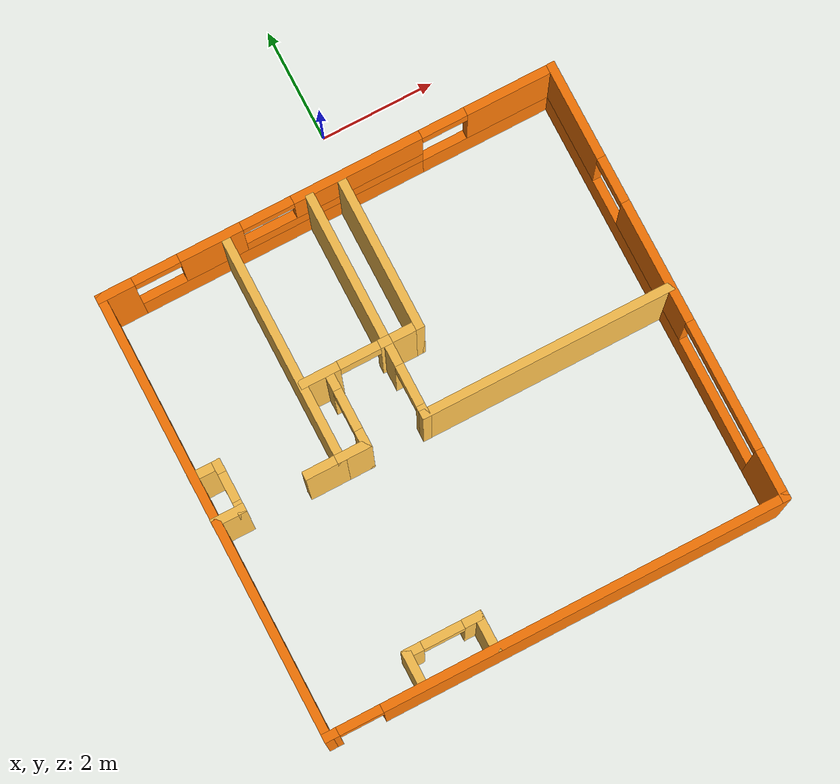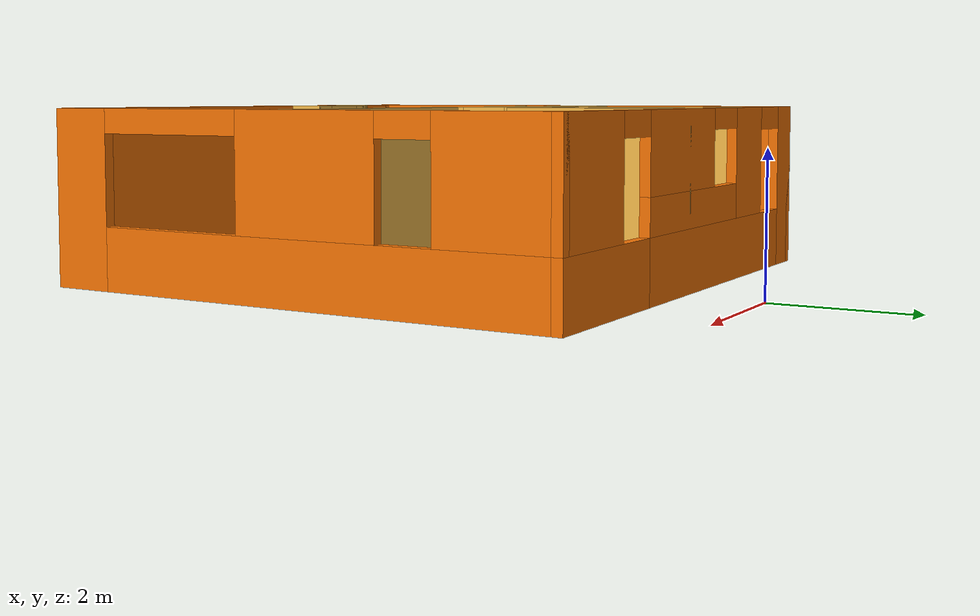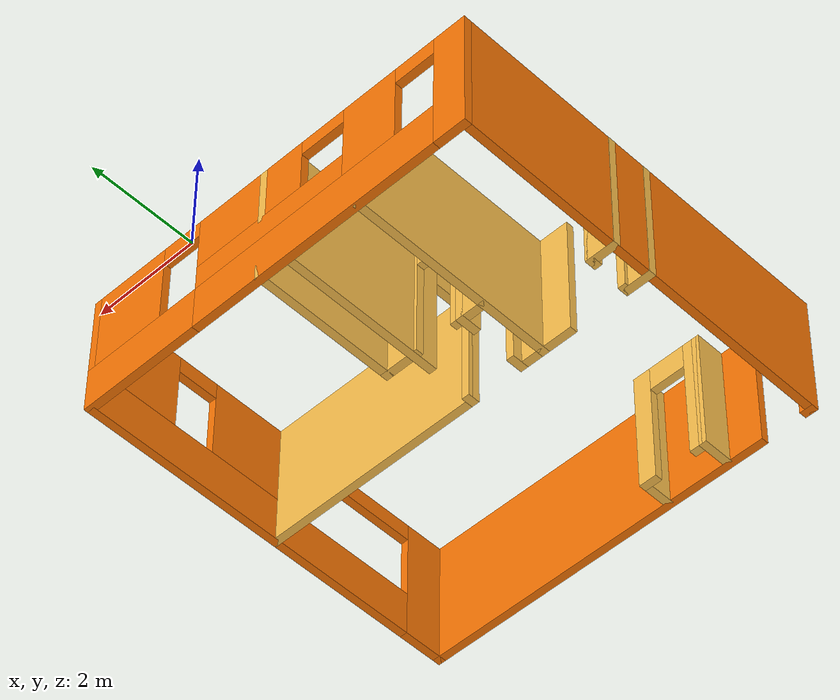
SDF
<?xml version='1.0'?>
<sdf version='1.6'>
  <model name='apartment2'>
    <pose frame=''>-0.4525 -5.0395 0 0 -0 0</pose>
    <link name='Wall_0'>
      <pose frame=''>0.0015 3.8495 0 0 -0 0</pose>
      <visual name='Wall_0_Visual_0'>
        <pose frame=''>-3.74544 0 1.25 0 -0 0</pose>
        <geometry>
          <box>
            <size>0.63713 0.15 2.5</size>
          </box>
        </geometry>
        <material>
          <script>
            <uri>file://media/materials/scripts/gazebo.material</uri>
            <name>Gazebo/Grey</name>
          </script>
          <ambient>0.996078 0.47451 0.0196078 1</ambient>
        </material>
        <meta>
          <layer>0</layer>
        </meta>
      </visual>
      <collision name='Wall_0_Collision_0'>
        <geometry>
          <box>
            <size>0.63713 0.15 2.5</size>
          </box>
        </geometry>
        <pose frame=''>-3.74544 0 1.25 0 -0 0</pose>
      </collision>
      <visual name='Wall_0_Visual_1'>
        <pose frame=''>-0.89256 0 0.4445 0 -0 0</pose>
        <geometry>
          <box>
            <size>5.06862 0.15 0.889</size>
          </box>
        </geometry>
        <material>
          <script>
            <uri>file://media/materials/scripts/gazebo.material</uri>
            <name>Gazebo/Grey</name>
          </script>
          <ambient>0.996078 0.47451 0.0196078 1</ambient>
        </material>
        <meta>
          <layer>0</layer>
        </meta>
      </visual>
      <collision name='Wall_0_Collision_1'>
        <geometry>
          <box>
            <size>5.06862 0.15 0.889</size>
          </box>
        </geometry>
        <pose frame=''>-0.89256 0 0.4445 0 -0 0</pose>
      </collision>
      <visual name='Wall_0_Visual_2'>
        <pose frame=''>2.85288 0 0.4445 0 -0 0</pose>
        <geometry>
          <box>
            <size>2.42225 0.15 0.889</size>
          </box>
        </geometry>
        <material>
          <script>
            <uri>file://media/materials/scripts/gazebo.material</uri>
            <name>Gazebo/Grey</name>
          </script>
          <ambient>0.996078 0.47451 0.0196078 1</ambient>
        </material>
        <meta>
          <layer>0</layer>
        </meta>
      </visual>
      <collision name='Wall_0_Collision_2'>
        <geometry>
          <box>
            <size>2.42225 0.15 0.889</size>
          </box>
        </geometry>
        <pose frame=''>2.85288 0 0.4445 0 -0 0</pose>
      </collision>
      <visual name='Wall_0_Visual_3'>
        <pose frame=''>3.25287 0 1.6945 0 -0 0</pose>
        <geometry>
          <box>
            <size>1.62225 0.15 1.611</size>
          </box>
        </geometry>
        <material>
          <script>
            <uri>file://media/materials/scripts/gazebo.material</uri>
            <name>Gazebo/Grey</name>
          </script>
          <ambient>0.996078 0.47451 0.0196078 1</ambient>
        </material>
        <meta>
          <layer>0</layer>
        </meta>
      </visual>
      <collision name='Wall_0_Collision_3'>
        <geometry>
          <box>
            <size>1.62225 0.15 1.611</size>
          </box>
        </geometry>
        <pose frame=''>3.25287 0 1.6945 0 -0 0</pose>
      </collision>
      <visual name='Wall_0_Visual_4'>
        <pose frame=''>-2.07636 0 1.6945 0 -0 0</pose>
        <geometry>
          <box>
            <size>1.10102 0.15 1.611</size>
          </box>
        </geometry>
        <material>
          <script>
            <uri>file://media/materials/scripts/gazebo.material</uri>
            <name>Gazebo/Grey</name>
          </script>
          <ambient>0.996078 0.47451 0.0196078 1</ambient>
        </material>
        <meta>
          <layer>0</layer>
        </meta>
      </visual>
      <collision name='Wall_0_Collision_4'>
        <geometry>
          <box>
            <size>1.10102 0.15 1.611</size>
          </box>
        </geometry>
        <pose frame=''>-2.07636 0 1.6945 0 -0 0</pose>
      </collision>
      <visual name='Wall_0_Visual_5'>
        <pose frame=''>-2.07636 0 1.6945 0 -0 0</pose>
        <geometry>
          <box>
            <size>1.10102 0.15 1.611</size>
          </box>
        </geometry>
        <material>
          <script>
            <uri>file://media/materials/scripts/gazebo.material</uri>
            <name>Gazebo/Grey</name>
          </script>
          <ambient>0.996078 0.47451 0.0196078 1</ambient>
        </material>
        <meta>
          <layer>0</layer>
        </meta>
      </visual>
      <collision name='Wall_0_Collision_5'>
        <geometry>
          <box>
            <size>1.10102 0.15 1.611</size>
          </box>
        </geometry>
        <pose frame=''>-2.07636 0 1.6945 0 -0 0</pose>
      </collision>
      <visual name='Wall_0_Visual_6'>
        <pose frame=''>0.057948 0 1.1445 0 -0 0</pose>
        <geometry>
          <box>
            <size>3.1676 0.15 0.511</size>
          </box>
        </geometry>
        <material>
          <script>
            <uri>file://media/materials/scripts/gazebo.material</uri>
            <name>Gazebo/Grey</name>
          </script>
          <ambient>0.996078 0.47451 0.0196078 1</ambient>
        </material>
        <meta>
          <layer>0</layer>
        </meta>
      </visual>
      <collision name='Wall_0_Collision_6'>
        <geometry>
          <box>
            <size>3.1676 0.15 0.511</size>
          </box>
        </geometry>
        <pose frame=''>0.057948 0 1.1445 0 -0 0</pose>
      </collision>
      <visual name='Wall_0_Visual_7'>
        <pose frame=''>0.057948 0 1.1445 0 -0 0</pose>
        <geometry>
          <box>
            <size>3.1676 0.15 0.511</size>
          </box>
        </geometry>
        <material>
          <script>
            <uri>file://media/materials/scripts/gazebo.material</uri>
            <name>Gazebo/Grey</name>
          </script>
          <ambient>0.996078 0.47451 0.0196078 1</ambient>
        </material>
        <meta>
          <layer>0</layer>
        </meta>
      </visual>
      <collision name='Wall_0_Collision_7'>
        <geometry>
          <box>
            <size>3.1676 0.15 0.511</size>
          </box>
        </geometry>
        <pose frame=''>0.057948 0 1.1445 0 -0 0</pose>
      </collision>
      <visual name='Wall_0_Visual_8'>
        <pose frame=''>0.507948 0 1.95 0 -0 0</pose>
        <geometry>
          <box>
            <size>2.2676 0.15 1.1</size>
          </box>
        </geometry>
        <material>
          <script>
            <uri>file://media/materials/scripts/gazebo.material</uri>
            <name>Gazebo/Grey</name>
          </script>
          <ambient>0.996078 0.47451 0.0196078 1</ambient>
        </material>
        <meta>
          <layer>0</layer>
        </meta>
      </visual>
      <collision name='Wall_0_Collision_8'>
        <geometry>
          <box>
            <size>2.2676 0.15 1.1</size>
          </box>
        </geometry>
        <pose frame=''>0.507948 0 1.95 0 -0 0</pose>
      </collision>
      <visual name='Wall_0_Visual_9'>
        <pose frame=''>0.507948 0 1.95 0 -0 0</pose>
        <geometry>
          <box>
            <size>2.2676 0.15 1.1</size>
          </box>
        </geometry>
        <material>
          <script>
            <uri>file://media/materials/scripts/gazebo.material</uri>
            <name>Gazebo/Grey</name>
          </script>
          <ambient>0.996078 0.47451 0.0196078 1</ambient>
        </material>
        <meta>
          <layer>0</layer>
        </meta>
      </visual>
      <collision name='Wall_0_Collision_9'>
        <geometry>
          <box>
            <size>2.2676 0.15 1.1</size>
          </box>
        </geometry>
        <pose frame=''>0.507948 0 1.95 0 -0 0</pose>
      </collision>
      <visual name='Wall_0_Visual_10'>
        <pose frame=''>2.04175 0 2.3295 0 -0 0</pose>
        <geometry>
          <box>
            <size>0.8 0.15 0.341</size>
          </box>
        </geometry>
        <material>
          <script>
            <uri>file://media/materials/scripts/gazebo.material</uri>
            <name>Gazebo/Grey</name>
          </script>
          <ambient>0.996078 0.47451 0.0196078 1</ambient>
        </material>
        <meta>
          <layer>0</layer>
        </meta>
      </visual>
      <collision name='Wall_0_Collision_10'>
        <geometry>
          <box>
            <size>0.8 0.15 0.341</size>
          </box>
        </geometry>
        <pose frame=''>2.04175 0 2.3295 0 -0 0</pose>
      </collision>
      <visual name='Wall_0_Visual_11'>
        <pose frame=''>2.04175 0 2.3295 0 -0 0</pose>
        <geometry>
          <box>
            <size>0.8 0.15 0.341</size>
          </box>
        </geometry>
        <material>
          <script>
            <uri>file://media/materials/scripts/gazebo.material</uri>
            <name>Gazebo/Grey</name>
          </script>
          <ambient>0.996078 0.47451 0.0196078 1</ambient>
        </material>
        <meta>
          <layer>0</layer>
        </meta>
      </visual>
      <collision name='Wall_0_Collision_11'>
        <geometry>
          <box>
            <size>0.8 0.15 0.341</size>
          </box>
        </geometry>
        <pose frame=''>2.04175 0 2.3295 0 -0 0</pose>
      </collision>
      <visual name='Wall_0_Visual_12'>
        <pose frame=''>-3.02687 0 2.3295 0 -0 0</pose>
        <geometry>
          <box>
            <size>0.8 0.15 0.341</size>
          </box>
        </geometry>
        <material>
          <script>
            <uri>file://media/materials/scripts/gazebo.material</uri>
            <name>Gazebo/Grey</name>
          </script>
          <ambient>0.996078 0.47451 0.0196078 1</ambient>
        </material>
        <meta>
          <layer>0</layer>
        </meta>
      </visual>
      <collision name='Wall_0_Collision_12'>
        <geometry>
          <box>
            <size>0.8 0.15 0.341</size>
          </box>
        </geometry>
        <pose frame=''>-3.02687 0 2.3295 0 -0 0</pose>
      </collision>
      <visual name='Wall_0_Visual_13'>
        <pose frame=''>-1.07585 0 2.35 0 -0 0</pose>
        <geometry>
          <box>
            <size>0.9 0.15 0.3</size>
          </box>
        </geometry>
        <material>
          <script>
            <uri>file://media/materials/scripts/gazebo.material</uri>
            <name>Gazebo/Grey</name>
          </script>
          <ambient>0.996078 0.47451 0.0196078 1</ambient>
        </material>
        <meta>
          <layer>0</layer>
        </meta>
      </visual>
      <collision name='Wall_0_Collision_13'>
        <geometry>
          <box>
            <size>0.9 0.15 0.3</size>
          </box>
        </geometry>
        <pose frame=''>-1.07585 0 2.35 0 -0 0</pose>
      </collision>
      <visual name='Wall_0_Visual_14'>
        <pose frame=''>-1.07585 0 2.35 0 -0 0</pose>
        <geometry>
          <box>
            <size>0.9 0.15 0.3</size>
          </box>
        </geometry>
        <material>
          <script>
            <uri>file://media/materials/scripts/gazebo.material</uri>
            <name>Gazebo/Grey</name>
          </script>
          <ambient>0.996078 0.47451 0.0196078 1</ambient>
        </material>
        <meta>
          <layer>0</layer>
        </meta>
      </visual>
      <collision name='Wall_0_Collision_14'>
        <geometry>
          <box>
            <size>0.9 0.15 0.3</size>
          </box>
        </geometry>
        <pose frame=''>-1.07585 0 2.35 0 -0 0</pose>
      </collision>
    </link>
    <link name='Wall_12'>
      <collision name='Wall_12_Collision'>
        <geometry>
          <box>
            <size>4.47 0.15 2.5</size>
          </box>
        </geometry>
        <pose frame=''>0 0 1.25 0 -0 0</pose>
      </collision>
      <visual name='Wall_12_Visual'>
        <pose frame=''>0 0 1.25 0 -0 0</pose>
        <geometry>
          <box>
            <size>4.47 0.15 2.5</size>
          </box>
        </geometry>
        <material>
          <script>
            <uri>file://media/materials/scripts/gazebo.material</uri>
            <name>Gazebo/Grey</name>
          </script>
          <ambient>1 0.764706 0.305882 1</ambient>
        </material>
        <meta>
          <layer>0</layer>
        </meta>
      </visual>
      <pose frame=''>1.8145 -0.1125 0 0 -0 3.14159</pose>
    </link>
    <link name='Wall_14'>
      <pose frame=''>-0.3455 1.8125 0 0 -0 1.5708</pose>
      <visual name='Wall_14_Visual_0'>
        <pose frame=''>-1.88475 0 1.25 0 -0 0</pose>
        <geometry>
          <box>
            <size>0.230491 0.15 2.5</size>
          </box>
        </geometry>
        <material>
          <script>
            <uri>file://media/materials/scripts/gazebo.material</uri>
            <name>Gazebo/Grey</name>
          </script>
          <ambient>1 0.764706 0.305882 1</ambient>
        </material>
        <meta>
          <layer>0</layer>
        </meta>
      </visual>
      <collision name='Wall_14_Collision_0'>
        <geometry>
          <box>
            <size>0.230491 0.15 2.5</size>
          </box>
        </geometry>
        <pose frame=''>-1.88475 0 1.25 0 -0 0</pose>
      </collision>
      <visual name='Wall_14_Visual_1'>
        <pose frame=''>0.470745 0 1.25 0 -0 0</pose>
        <geometry>
          <box>
            <size>3.05851 0.15 2.5</size>
          </box>
        </geometry>
        <material>
          <script>
            <uri>file://media/materials/scripts/gazebo.material</uri>
            <name>Gazebo/Grey</name>
          </script>
          <ambient>1 0.764706 0.305882 1</ambient>
        </material>
        <meta>
          <layer>0</layer>
        </meta>
      </visual>
      <collision name='Wall_14_Collision_1'>
        <geometry>
          <box>
            <size>3.05851 0.15 2.5</size>
          </box>
        </geometry>
        <pose frame=''>0.470745 0 1.25 0 -0 0</pose>
      </collision>
      <visual name='Wall_14_Visual_2'>
        <pose frame=''>-1.41401 0 2.25 0 -0 0</pose>
        <geometry>
          <box>
            <size>0.711 0.15 0.5</size>
          </box>
        </geometry>
        <material>
          <script>
            <uri>file://media/materials/scripts/gazebo.material</uri>
            <name>Gazebo/Grey</name>
          </script>
          <ambient>1 0.764706 0.305882 1</ambient>
        </material>
        <meta>
          <layer>0</layer>
        </meta>
      </visual>
      <collision name='Wall_14_Collision_2'>
        <geometry>
          <box>
            <size>0.711 0.15 0.5</size>
          </box>
        </geometry>
        <pose frame=''>-1.41401 0 2.25 0 -0 0</pose>
      </collision>
    </link>
    <link name='Wall_16'>
      <collision name='Wall_16_Collision'>
        <geometry>
          <box>
            <size>4.08 0.15 2.5</size>
          </box>
        </geometry>
        <pose frame=''>0 0 1.25 0 -0 0</pose>
      </collision>
      <visual name='Wall_16_Visual'>
        <pose frame=''>0 0 1.25 0 -0 0</pose>
        <geometry>
          <box>
            <size>4.08 0.15 2.5</size>
          </box>
        </geometry>
        <material>
          <script>
            <uri>file://media/materials/scripts/gazebo.material</uri>
            <name>Gazebo/Grey</name>
          </script>
          <ambient>1 0.764706 0.305882 1</ambient>
        </material>
        <meta>
          <layer>0</layer>
        </meta>
      </visual>
      <pose frame=''>-1.8285 1.8525 0 0 0 -1.5708</pose>
    </link>
    <link name='Wall_18'>
      <collision name='Wall_18_Collision'>
        <geometry>
          <box>
            <size>0.711 0.15 2.5</size>
          </box>
        </geometry>
        <pose frame=''>0 0 1.25 0 -0 0</pose>
      </collision>
      <visual name='Wall_18_Visual'>
        <pose frame=''>0 0 1.25 0 -0 0</pose>
        <geometry>
          <box>
            <size>0.711 0.15 2.5</size>
          </box>
        </geometry>
        <material>
          <script>
            <uri>file://media/materials/scripts/gazebo.material</uri>
            <name>Gazebo/Grey</name>
          </script>
          <ambient>1 0.764706 0.305882 1</ambient>
        </material>
        <meta>
          <layer>0</layer>
        </meta>
      </visual>
      <pose frame=''>-2.109 -0.1125 0 0 -0 3.14159</pose>
    </link>
    <link name='Wall_2'>
      <collision name='Wall_2_Collision'>
        <geometry>
          <box>
            <size>7.849 0.15 2.5</size>
          </box>
        </geometry>
        <pose frame=''>0 0 1.25 0 -0 0</pose>
      </collision>
      <visual name='Wall_2_Visual'>
        <pose frame=''>0 0 1.25 0 -0 0</pose>
        <geometry>
          <box>
            <size>7.849 0.15 2.5</size>
          </box>
        </geometry>
        <material>
          <script>
            <uri>file://media/materials/scripts/gazebo.material</uri>
            <name>Gazebo/Grey</name>
          </script>
          <ambient>0.996078 0.47451 0.0196078 1</ambient>
        </material>
        <meta>
          <layer>0</layer>
        </meta>
      </visual>
      <pose frame=''>-3.9875 0 0 0 0 -1.5708</pose>
    </link>
    <link name='Wall_20'>
      <collision name='Wall_20_Collision'>
        <geometry>
          <box>
            <size>0.58 0.15 2.5</size>
          </box>
        </geometry>
        <pose frame=''>0 0 1.25 0 -0 0</pose>
      </collision>
      <visual name='Wall_20_Visual'>
        <pose frame=''>0 0 1.25 0 -0 0</pose>
        <geometry>
          <box>
            <size>0.58 0.15 2.5</size>
          </box>
        </geometry>
        <material>
          <script>
            <uri>file://media/materials/scripts/gazebo.material</uri>
            <name>Gazebo/Grey</name>
          </script>
          <ambient>1 0.764706 0.305882 1</ambient>
        </material>
        <meta>
          <layer>0</layer>
        </meta>
      </visual>
      <pose frame=''>-3.7755 -0.1125 0 0 -0 0</pose>
    </link>
    <link name='Wall_22'>
      <pose frame=''>-3.5605 0.282 0 0 -0 1.5708</pose>
      <visual name='Wall_22_Visual_0'>
        <pose frame=''>-0.361845 0 1.25 0 -0 0</pose>
        <geometry>
          <box>
            <size>0.21531 0.15 2.5</size>
          </box>
        </geometry>
        <material>
          <script>
            <uri>file://media/materials/scripts/gazebo.material</uri>
            <name>Gazebo/Grey</name>
          </script>
          <ambient>1 0.764706 0.305882 1</ambient>
        </material>
        <meta>
          <layer>0</layer>
        </meta>
      </visual>
      <collision name='Wall_22_Collision_0'>
        <geometry>
          <box>
            <size>0.21531 0.15 2.5</size>
          </box>
        </geometry>
        <pose frame=''>-0.361845 0 1.25 0 -0 0</pose>
      </collision>
      <visual name='Wall_22_Visual_1'>
        <pose frame=''>0.357655 0 1.25 0 -0 0</pose>
        <geometry>
          <box>
            <size>0.22369 0.15 2.5</size>
          </box>
        </geometry>
        <material>
          <script>
            <uri>file://media/materials/scripts/gazebo.material</uri>
            <name>Gazebo/Grey</name>
          </script>
          <ambient>1 0.764706 0.305882 1</ambient>
        </material>
        <meta>
          <layer>0</layer>
        </meta>
      </visual>
      <collision name='Wall_22_Collision_1'>
        <geometry>
          <box>
            <size>0.22369 0.15 2.5</size>
          </box>
        </geometry>
        <pose frame=''>0.357655 0 1.25 0 -0 0</pose>
      </collision>
      <visual name='Wall_22_Visual_2'>
        <pose frame=''>-0.00419 0 2.25 0 -0 0</pose>
        <geometry>
          <box>
            <size>0.5 0.15 0.5</size>
          </box>
        </geometry>
        <material>
          <script>
            <uri>file://media/materials/scripts/gazebo.material</uri>
            <name>Gazebo/Grey</name>
          </script>
          <ambient>1 0.764706 0.305882 1</ambient>
        </material>
        <meta>
          <layer>0</layer>
        </meta>
      </visual>
      <collision name='Wall_22_Collision_2'>
        <geometry>
          <box>
            <size>0.5 0.15 0.5</size>
          </box>
        </geometry>
        <pose frame=''>-0.00419 0 2.25 0 -0 0</pose>
      </collision>
    </link>
    <link name='Wall_24'>
      <collision name='Wall_24_Collision'>
        <geometry>
          <box>
            <size>0.58 0.15 2.5</size>
          </box>
        </geometry>
        <pose frame=''>0 0 1.25 0 -0 0</pose>
      </collision>
      <visual name='Wall_24_Visual'>
        <pose frame=''>0 0 1.25 0 -0 0</pose>
        <geometry>
          <box>
            <size>0.58 0.15 2.5</size>
          </box>
        </geometry>
        <material>
          <script>
            <uri>file://media/materials/scripts/gazebo.material</uri>
            <name>Gazebo/Grey</name>
          </script>
          <ambient>1 0.764706 0.305882 1</ambient>
        </material>
        <meta>
          <layer>0</layer>
        </meta>
      </visual>
      <pose frame=''>-3.7755 0.6765 0 0 -0 3.14159</pose>
    </link>
    <link name='Wall_26'>
      <pose frame=''>-1.072 1.1825 0 0 -0 0</pose>
      <visual name='Wall_26_Visual_0'>
        <pose frame=''>-0.458995 0 1.25 0 -0 0</pose>
        <geometry>
          <box>
            <size>0.685009 0.15 2.5</size>
          </box>
        </geometry>
        <material>
          <script>
            <uri>file://media/materials/scripts/gazebo.material</uri>
            <name>Gazebo/Grey</name>
          </script>
          <ambient>1 0.764706 0.305882 1</ambient>
        </material>
        <meta>
          <layer>0</layer>
        </meta>
      </visual>
      <collision name='Wall_26_Collision_0'>
        <geometry>
          <box>
            <size>0.685009 0.15 2.5</size>
          </box>
        </geometry>
        <pose frame=''>-0.458995 0 1.25 0 -0 0</pose>
      </collision>
      <visual name='Wall_26_Visual_1'>
        <pose frame=''>0.698005 0 1.25 0 -0 0</pose>
        <geometry>
          <box>
            <size>0.206991 0.15 2.5</size>
          </box>
        </geometry>
        <material>
          <script>
            <uri>file://media/materials/scripts/gazebo.material</uri>
            <name>Gazebo/Grey</name>
          </script>
          <ambient>1 0.764706 0.305882 1</ambient>
        </material>
        <meta>
          <layer>0</layer>
        </meta>
      </visual>
      <collision name='Wall_26_Collision_1'>
        <geometry>
          <box>
            <size>0.206991 0.15 2.5</size>
          </box>
        </geometry>
        <pose frame=''>0.698005 0 1.25 0 -0 0</pose>
      </collision>
      <visual name='Wall_26_Visual_2'>
        <pose frame=''>0.239009 0 2.25 0 -0 0</pose>
        <geometry>
          <box>
            <size>0.711 0.15 0.5</size>
          </box>
        </geometry>
        <material>
          <script>
            <uri>file://media/materials/scripts/gazebo.material</uri>
            <name>Gazebo/Grey</name>
          </script>
          <ambient>1 0.764706 0.305882 1</ambient>
        </material>
        <meta>
          <layer>0</layer>
        </meta>
      </visual>
      <collision name='Wall_26_Collision_2'>
        <geometry>
          <box>
            <size>0.711 0.15 0.5</size>
          </box>
        </geometry>
        <pose frame=''>0.239009 0 2.25 0 -0 0</pose>
      </collision>
    </link>
    <link name='Wall_39'>
      <collision name='Wall_39_Collision'>
        <geometry>
          <box>
            <size>0.711 0.15 2.5</size>
          </box>
        </geometry>
        <pose frame=''>0 0 1.25 0 -0 0</pose>
      </collision>
      <visual name='Wall_39_Visual'>
        <pose frame=''>0 0 1.25 0 -0 0</pose>
        <geometry>
          <box>
            <size>0.711 0.15 2.5</size>
          </box>
        </geometry>
        <material>
          <script>
            <uri>file://media/materials/scripts/gazebo.material</uri>
            <name>Gazebo/Grey</name>
          </script>
          <ambient>1 0.764706 0.305882 1</ambient>
        </material>
        <meta>
          <layer>0</layer>
        </meta>
      </visual>
      <pose frame=''>-0.065 1.1825 0 0 -0 0</pose>
    </link>
    <link name='Wall_4'>
      <pose frame=''>0.0015 -3.8495 0 0 -0 0</pose>
      <visual name='Wall_4_Visual_0'>
        <pose frame=''>-3.93707 0 1.25 0 -0 0</pose>
        <geometry>
          <box>
            <size>0.253859 0.15 2.5</size>
          </box>
        </geometry>
        <material>
          <script>
            <uri>file://media/materials/scripts/gazebo.material</uri>
            <name>Gazebo/Grey</name>
          </script>
          <ambient>0.996078 0.47451 0.0196078 1</ambient>
        </material>
        <meta>
          <layer>0</layer>
        </meta>
      </visual>
      <collision name='Wall_4_Collision_0'>
        <geometry>
          <box>
            <size>0.253859 0.15 2.5</size>
          </box>
        </geometry>
        <pose frame=''>-3.93707 0 1.25 0 -0 0</pose>
      </collision>
      <visual name='Wall_4_Visual_1'>
        <pose frame=''>0.507929 0 1.25 0 -0 0</pose>
        <geometry>
          <box>
            <size>7.11214 0.15 2.5</size>
          </box>
        </geometry>
        <material>
          <script>
            <uri>file://media/materials/scripts/gazebo.material</uri>
            <name>Gazebo/Grey</name>
          </script>
          <ambient>0.996078 0.47451 0.0196078 1</ambient>
        </material>
        <meta>
          <layer>0</layer>
        </meta>
      </visual>
      <collision name='Wall_4_Collision_1'>
        <geometry>
          <box>
            <size>7.11214 0.15 2.5</size>
          </box>
        </geometry>
        <pose frame=''>0.507929 0 1.25 0 -0 0</pose>
      </collision>
      <visual name='Wall_4_Visual_2'>
        <pose frame=''>-3.42914 0 2.25 0 -0 0</pose>
        <geometry>
          <box>
            <size>0.762 0.15 0.5</size>
          </box>
        </geometry>
        <material>
          <script>
            <uri>file://media/materials/scripts/gazebo.material</uri>
            <name>Gazebo/Grey</name>
          </script>
          <ambient>0.996078 0.47451 0.0196078 1</ambient>
        </material>
        <meta>
          <layer>0</layer>
        </meta>
      </visual>
      <collision name='Wall_4_Collision_2'>
        <geometry>
          <box>
            <size>0.762 0.15 0.5</size>
          </box>
        </geometry>
        <pose frame=''>-3.42914 0 2.25 0 -0 0</pose>
      </collision>
    </link>
    <link name='Wall_41'>
      <collision name='Wall_41_Collision'>
        <geometry>
          <box>
            <size>2.817 0.15 2.5</size>
          </box>
        </geometry>
        <pose frame=''>0 0 1.25 0 -0 0</pose>
      </collision>
      <visual name='Wall_41_Visual'>
        <pose frame=''>0 0 1.25 0 -0 0</pose>
        <geometry>
          <box>
            <size>2.817 0.15 2.5</size>
          </box>
        </geometry>
        <material>
          <script>
            <uri>file://media/materials/scripts/gazebo.material</uri>
            <name>Gazebo/Grey</name>
          </script>
          <ambient>1 0.764706 0.305882 1</ambient>
        </material>
        <meta>
          <layer>0</layer>
        </meta>
      </visual>
      <pose frame=''>0.2155 2.516 0 0 -0 1.5708</pose>
    </link>
    <link name='Wall_43'>
      <collision name='Wall_43_Collision'>
        <geometry>
          <box>
            <size>0.6 0.15 2.5</size>
          </box>
        </geometry>
        <pose frame=''>0 0 1.25 0 -0 0</pose>
      </collision>
      <visual name='Wall_43_Visual'>
        <pose frame=''>0 0 1.25 0 -0 0</pose>
        <geometry>
          <box>
            <size>0.6 0.15 2.5</size>
          </box>
        </geometry>
        <material>
          <script>
            <uri>file://media/materials/scripts/gazebo.material</uri>
            <name>Gazebo/Grey</name>
          </script>
          <ambient>1 0.764706 0.305882 1</ambient>
        </material>
        <meta>
          <layer>0</layer>
        </meta>
      </visual>
      <pose frame=''>-1.6035 -0.1125 0 0 -0 0</pose>
    </link>
    <link name='Wall_46'>
      <pose frame=''>-1.3785 0.535 0 0 -0 1.5708</pose>
      <visual name='Wall_46_Visual_0'>
        <pose frame=''>-0.556971 0 1.25 0 -0 0</pose>
        <geometry>
          <box>
            <size>0.331058 0.15 2.5</size>
          </box>
        </geometry>
        <material>
          <script>
            <uri>file://media/materials/scripts/gazebo.material</uri>
            <name>Gazebo/Grey</name>
          </script>
          <ambient>1 0.764706 0.305882 1</ambient>
        </material>
        <meta>
          <layer>0</layer>
        </meta>
      </visual>
      <collision name='Wall_46_Collision_0'>
        <geometry>
          <box>
            <size>0.331058 0.15 2.5</size>
          </box>
        </geometry>
        <pose frame=''>-0.556971 0 1.25 0 -0 0</pose>
      </collision>
      <visual name='Wall_46_Visual_1'>
        <pose frame=''>0.521029 0 1.25 0 -0 0</pose>
        <geometry>
          <box>
            <size>0.402942 0.15 2.5</size>
          </box>
        </geometry>
        <material>
          <script>
            <uri>file://media/materials/scripts/gazebo.material</uri>
            <name>Gazebo/Grey</name>
          </script>
          <ambient>1 0.764706 0.305882 1</ambient>
        </material>
        <meta>
          <layer>0</layer>
        </meta>
      </visual>
      <collision name='Wall_46_Collision_1'>
        <geometry>
          <box>
            <size>0.402942 0.15 2.5</size>
          </box>
        </geometry>
        <pose frame=''>0.521029 0 1.25 0 -0 0</pose>
      </collision>
      <visual name='Wall_46_Visual_2'>
        <pose frame=''>-0.035942 0 2.25 0 -0 0</pose>
        <geometry>
          <box>
            <size>0.711 0.15 0.5</size>
          </box>
        </geometry>
        <material>
          <script>
            <uri>file://media/materials/scripts/gazebo.material</uri>
            <name>Gazebo/Grey</name>
          </script>
          <ambient>1 0.764706 0.305882 1</ambient>
        </material>
        <meta>
          <layer>0</layer>
        </meta>
      </visual>
      <collision name='Wall_46_Collision_2'>
        <geometry>
          <box>
            <size>0.711 0.15 0.5</size>
          </box>
        </geometry>
        <pose frame=''>-0.035942 0 2.25 0 -0 0</pose>
      </collision>
    </link>
    <link name='Wall_51'>
      <collision name='Wall_51_Collision'>
        <geometry>
          <box>
            <size>0.711 0.15 2.5</size>
          </box>
        </geometry>
        <pose frame=''>0 0 1.25 0 -0 0</pose>
      </collision>
      <visual name='Wall_51_Visual'>
        <pose frame=''>0 0 1.25 0 -0 0</pose>
        <geometry>
          <box>
            <size>0.711 0.15 2.5</size>
          </box>
        </geometry>
        <material>
          <script>
            <uri>file://media/materials/scripts/gazebo.material</uri>
            <name>Gazebo/Grey</name>
          </script>
          <ambient>1 0.764706 0.305882 1</ambient>
        </material>
        <meta>
          <layer>0</layer>
        </meta>
      </visual>
      <pose frame=''>-2.3175 -3.565 0 0 -0 1.5708</pose>
    </link>
    <link name='Wall_53'>
      <pose frame=''>-1.694 -3.2845 0 0 -0 0</pose>
      <visual name='Wall_53_Visual_0'>
        <pose frame=''>-0.528937 0 1.25 0 -0 0</pose>
        <geometry>
          <box>
            <size>0.339126 0.15 2.5</size>
          </box>
        </geometry>
        <material>
          <script>
            <uri>file://media/materials/scripts/gazebo.material</uri>
            <name>Gazebo/Grey</name>
          </script>
          <ambient>1 0.764706 0.305882 1</ambient>
        </material>
        <meta>
          <layer>0</layer>
        </meta>
      </visual>
      <collision name='Wall_53_Collision_0'>
        <geometry>
          <box>
            <size>0.339126 0.15 2.5</size>
          </box>
        </geometry>
        <pose frame=''>-0.528937 0 1.25 0 -0 0</pose>
      </collision>
      <visual name='Wall_53_Visual_1'>
        <pose frame=''>0.525063 0 1.25 0 -0 0</pose>
        <geometry>
          <box>
            <size>0.346874 0.15 2.5</size>
          </box>
        </geometry>
        <material>
          <script>
            <uri>file://media/materials/scripts/gazebo.material</uri>
            <name>Gazebo/Grey</name>
          </script>
          <ambient>1 0.764706 0.305882 1</ambient>
        </material>
        <meta>
          <layer>0</layer>
        </meta>
      </visual>
      <collision name='Wall_53_Collision_1'>
        <geometry>
          <box>
            <size>0.346874 0.15 2.5</size>
          </box>
        </geometry>
        <pose frame=''>0.525063 0 1.25 0 -0 0</pose>
      </collision>
      <visual name='Wall_53_Visual_2'>
        <pose frame=''>-0.003874 0 2.25 0 -0 0</pose>
        <geometry>
          <box>
            <size>0.711 0.15 0.5</size>
          </box>
        </geometry>
        <material>
          <script>
            <uri>file://media/materials/scripts/gazebo.material</uri>
            <name>Gazebo/Grey</name>
          </script>
          <ambient>1 0.764706 0.305882 1</ambient>
        </material>
        <meta>
          <layer>0</layer>
        </meta>
      </visual>
      <collision name='Wall_53_Collision_2'>
        <geometry>
          <box>
            <size>0.711 0.15 0.5</size>
          </box>
        </geometry>
        <pose frame=''>-0.003874 0 2.25 0 -0 0</pose>
      </collision>
    </link>
    <link name='Wall_57'>
      <collision name='Wall_57_Collision'>
        <geometry>
          <box>
            <size>0.711 0.15 2.5</size>
          </box>
        </geometry>
        <pose frame=''>0 0 1.25 0 -0 0</pose>
      </collision>
      <visual name='Wall_57_Visual'>
        <pose frame=''>0 0 1.25 0 -0 0</pose>
        <geometry>
          <box>
            <size>0.711 0.15 2.5</size>
          </box>
        </geometry>
        <material>
          <script>
            <uri>file://media/materials/scripts/gazebo.material</uri>
            <name>Gazebo/Grey</name>
          </script>
          <ambient>1 0.764706 0.305882 1</ambient>
        </material>
        <meta>
          <layer>0</layer>
        </meta>
      </visual>
      <pose frame=''>-1.0705 -3.565 0 0 0 -1.5708</pose>
    </link>
    <link name='Wall_8'>
      <pose frame=''>3.9905 0 0 0 -0 1.5708</pose>
      <visual name='Wall_8_Visual_0'>
        <pose frame=''>-3.46767 0 1.25 0 -0 0</pose>
        <geometry>
          <box>
            <size>0.913657 0.15 2.5</size>
          </box>
        </geometry>
        <material>
          <script>
            <uri>file://media/materials/scripts/gazebo.material</uri>
            <name>Gazebo/Grey</name>
          </script>
          <ambient>0.996078 0.47451 0.0196078 1</ambient>
        </material>
        <meta>
          <layer>0</layer>
        </meta>
      </visual>
      <collision name='Wall_8_Collision_0'>
        <geometry>
          <box>
            <size>0.913657 0.15 2.5</size>
          </box>
        </geometry>
        <pose frame=''>-3.46767 0 1.25 0 -0 0</pose>
      </collision>
      <visual name='Wall_8_Visual_1'>
        <pose frame=''>0.456829 0 0.4445 0 -0 0</pose>
        <geometry>
          <box>
            <size>6.93534 0.15 0.889</size>
          </box>
        </geometry>
        <material>
          <script>
            <uri>file://media/materials/scripts/gazebo.material</uri>
            <name>Gazebo/Grey</name>
          </script>
          <ambient>0.996078 0.47451 0.0196078 1</ambient>
        </material>
        <meta>
          <layer>0</layer>
        </meta>
      </visual>
      <collision name='Wall_8_Collision_1'>
        <geometry>
          <box>
            <size>6.93534 0.15 0.889</size>
          </box>
        </geometry>
        <pose frame=''>0.456829 0 0.4445 0 -0 0</pose>
      </collision>
      <visual name='Wall_8_Visual_2'>
        <pose frame=''>0.334299 0 1.6945 0 -0 0</pose>
        <geometry>
          <box>
            <size>2.14428 0.15 1.611</size>
          </box>
        </geometry>
        <material>
          <script>
            <uri>file://media/materials/scripts/gazebo.material</uri>
            <name>Gazebo/Grey</name>
          </script>
          <ambient>0.996078 0.47451 0.0196078 1</ambient>
        </material>
        <meta>
          <layer>0</layer>
        </meta>
      </visual>
      <collision name='Wall_8_Collision_2'>
        <geometry>
          <box>
            <size>2.14428 0.15 1.611</size>
          </box>
        </geometry>
        <pose frame=''>0.334299 0 1.6945 0 -0 0</pose>
      </collision>
      <visual name='Wall_8_Visual_3'>
        <pose frame=''>3.06547 0 1.6945 0 -0 0</pose>
        <geometry>
          <box>
            <size>1.71806 0.15 1.611</size>
          </box>
        </geometry>
        <material>
          <script>
            <uri>file://media/materials/scripts/gazebo.material</uri>
            <name>Gazebo/Grey</name>
          </script>
          <ambient>0.996078 0.47451 0.0196078 1</ambient>
        </material>
        <meta>
          <layer>0</layer>
        </meta>
      </visual>
      <collision name='Wall_8_Collision_3'>
        <geometry>
          <box>
            <size>1.71806 0.15 1.611</size>
          </box>
        </geometry>
        <pose frame=''>3.06547 0 1.6945 0 -0 0</pose>
      </collision>
      <visual name='Wall_8_Visual_4'>
        <pose frame=''>-1.87434 0 2.3295 0 -0 0</pose>
        <geometry>
          <box>
            <size>2.273 0.15 0.341</size>
          </box>
        </geometry>
        <material>
          <script>
            <uri>file://media/materials/scripts/gazebo.material</uri>
            <name>Gazebo/Grey</name>
          </script>
          <ambient>0.996078 0.47451 0.0196078 1</ambient>
        </material>
        <meta>
          <layer>0</layer>
        </meta>
      </visual>
      <collision name='Wall_8_Collision_4'>
        <geometry>
          <box>
            <size>2.273 0.15 0.341</size>
          </box>
        </geometry>
        <pose frame=''>-1.87434 0 2.3295 0 -0 0</pose>
      </collision>
      <visual name='Wall_8_Visual_5'>
        <pose frame=''>1.80644 0 2.3295 0 -0 0</pose>
        <geometry>
          <box>
            <size>0.8 0.15 0.341</size>
          </box>
        </geometry>
        <material>
          <script>
            <uri>file://media/materials/scripts/gazebo.material</uri>
            <name>Gazebo/Grey</name>
          </script>
          <ambient>0.996078 0.47451 0.0196078 1</ambient>
        </material>
        <meta>
          <layer>0</layer>
        </meta>
      </visual>
      <collision name='Wall_8_Collision_5'>
        <geometry>
          <box>
            <size>0.8 0.15 0.341</size>
          </box>
        </geometry>
        <pose frame=''>1.80644 0 2.3295 0 -0 0</pose>
      </collision>
    </link>
    <static>1</static>
  </model>
</sdf>
